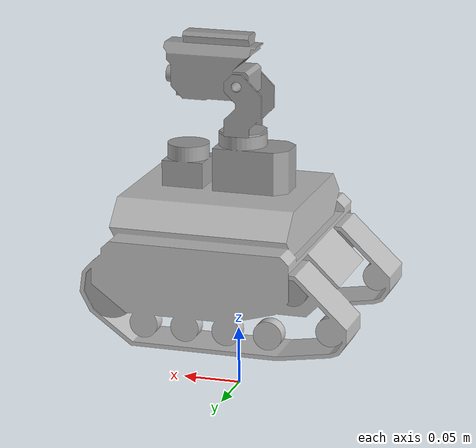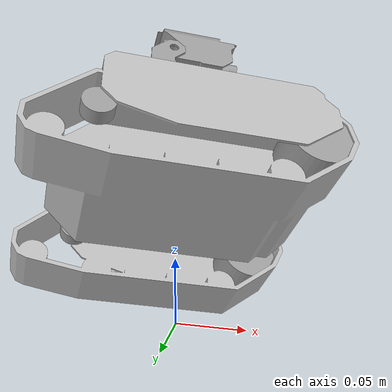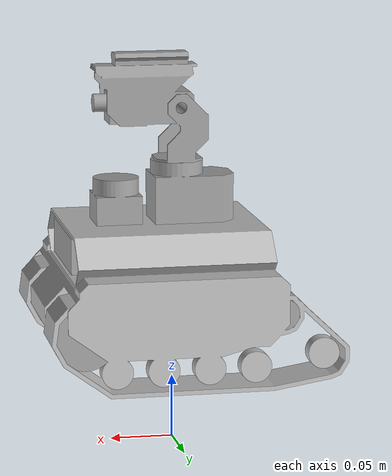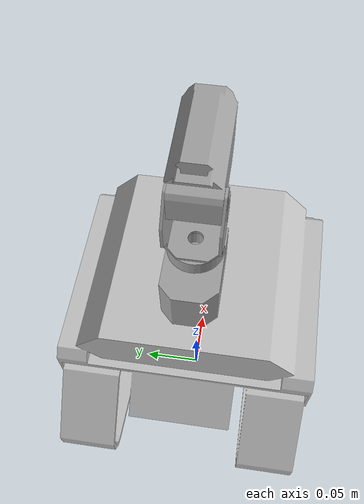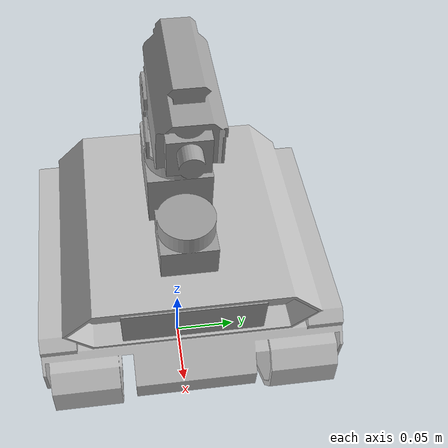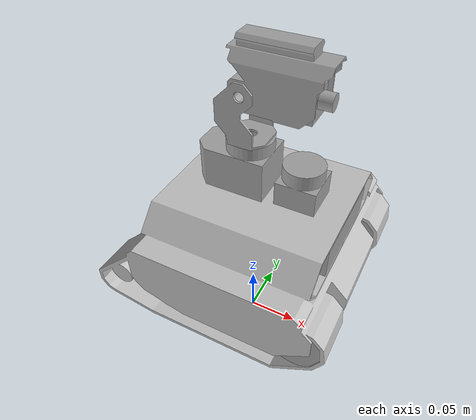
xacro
<?xml version="1.0" encoding="utf-8"?>
<robot
  name="ugv_beast"
  xmlns:xacro="http://www.ros.org/wiki/xacro">

  <!-- ros2_control: real robot by default; use_sim swaps in gz_ros2_control. -->
  <xacro:arg name="use_sim" default="false"/>
  <xacro:arg name="serial_device" default="/dev/ttyAMA0"/>
  <xacro:arg name="controllers_file"
             default="$(find ugv_bringup)/config/ugv_beast_controllers.yaml"/>

  <xacro:include filename="$(find ugv_description)/urdf/ugv_beast.ros2_control.xacro"/>
  <xacro:ugv_ros2_control name="ugv_beast"
                          use_sim="$(arg use_sim)"
                          serial_device="$(arg serial_device)"/>

  <!-- new-Gazebo sensors + gz_ros2_control system + track friction (sim only). -->
  <xacro:if value="$(arg use_sim)">
    <xacro:include filename="$(find ugv_description)/urdf/ugv_beast.gazebo.xacro"/>
    <xacro:ugv_beast_gazebo controllers_yaml="$(arg controllers_file)"/>
  </xacro:if>

  <link name="base_footprint"></link>
  <link
    name="base_link">
    <inertial>
      <origin
        xyz="0.00354888755897578 5.76435566946675E-16 0.0484823949816299"
        rpy="0 0 0" />
      <mass
        value="2.03227373732274" />
      <inertia
        ixx="0.00454892624270289"
        ixy="1.88130381907213E-16"
        ixz="-1.49884111957882E-05"
        iyy="0.00640381872536097"
        iyz="2.79234562022245E-17"
        izz="0.00806050395736081" />
    </inertial>
    <visual>
      <origin
        xyz="0 0 0"
        rpy="0 0 0" />
      <geometry>
        <mesh
          filename="package://ugv_description/meshes/ugv_beast/base_link.stl" />
      </geometry>
      <material
        name="">
        <color
          rgba="0.752941176470588 0.752941176470588 0.752941176470588 1" />
      </material>
    </visual>
    <collision>
      <origin
        xyz="0 0 0"
        rpy="0 0 0" />
      <geometry>
        <mesh
          filename="package://ugv_description/meshes/ugv_beast/base_link.stl" />
      </geometry>
    </collision>
  </link>

    <joint name="base_joint" type="fixed">
    <parent link="base_footprint"/>
    <child link="base_link"/>
    <origin xyz="0.000460087791654118 6.50856019576702E-10 0.08" rpy="0 0 0"/>
  </joint>

  <link name="base_imu_link">
      <origin xyz="0 0 0" rpy="0 0 0"/>
  </link>

  <joint name="imu_joint" type="fixed">
      <parent link="base_link" />
      <child link="base_imu_link" />
      <origin xyz="0 0 0" rpy="0 0 0"/>
  </joint>

  <link
    name="left_up_wheel_link">
    <inertial>
      <origin
        xyz="1.85684800868557E-14 0.015500000552408 7.25114412958305E-16"
        rpy="0 0 0" />
      <mass
        value="0.207085933743005" />
      <inertia
        ixx="0.000116541923504163"
        ixy="0"
        ixz="0"
        iyy="0.000170742352371108"
        iyz="0"
        izz="0.000116541923504163" />
    </inertial>
    <visual>
      <origin
        xyz="0 0 0"
        rpy="0 0 0" />
      <geometry>
        <mesh
          filename="package://ugv_description/meshes/ugv_beast/left_up_wheel_link.stl" />
      </geometry>
      <material
        name="">
        <color
          rgba="0.627450980392157 0.627450980392157 0.627450980392157 1" />
      </material>
    </visual>
    <!-- Sim contact: cylinder (radius = controller wheel_radius) instead of the
         mesh; the mesh stays as the visual. Axis along the axle (y) via roll=pi/2. -->
    <collision>
      <origin
        xyz="0 0.0155 0"
        rpy="1.5708 0 0" />
      <geometry>
        <cylinder radius="0.025" length="0.03"/>
      </geometry>
    </collision>
  </link>
  <joint
    name="left_up_wheel_link_joint"
    type="continuous">
    <origin
      xyz="0.0832175533230826 0.0619109945296507 0.0261492872743138"
      rpy="0 0 0" />
    <parent
      link="base_link" />
    <child
      link="left_up_wheel_link" />
    <axis
      xyz="0 -1 0" />
  </joint>
  <link
    name="left_down_wheel_link">
    <inertial>
      <origin
        xyz="7.2025718722557E-15 0.00599999763555432 3.33066907387547E-16"
        rpy="0 0 0" />
      <mass
        value="0.207085933743005" />
      <inertia
        ixx="0.000116541923504163"
        ixy="0"
        ixz="0"
        iyy="0.000170742352371108"
        iyz="0"
        izz="0.000116541923504163" />
    </inertial>
    <visual>
      <origin
        xyz="0 0 0"
        rpy="0 0 0" />
      <geometry>
        <mesh
          filename="package://ugv_description/meshes/ugv_beast/left_down_wheel_link.stl" />
      </geometry>
      <material
        name="">
        <color
          rgba="0.627450980392157 0.627450980392157 0.627450980392157 1" />
      </material>
    </visual>
    <collision>
      <origin
        xyz="0 0.006 0"
        rpy="1.5708 0 0" />
      <geometry>
        <cylinder radius="0.025" length="0.03"/>
      </geometry>
    </collision>
  </link>
  <joint
    name="left_down_wheel_link_joint"
    type="continuous">
    <origin
      xyz="-0.0722382907996229 0.0707110003635451 0.0356492872743132"
      rpy="0 0 0" />
    <parent
      link="base_link" />
    <child
      link="left_down_wheel_link" />
    <axis
      xyz="0 -1 0" />
  </joint>
  <link
    name="right_up_wheel_link">
    <inertial>
      <origin
        xyz="1.83603132697385E-14 -0.015500000552408 7.25114412958305E-16"
        rpy="0 0 0" />
      <mass
        value="0.207085933743005" />
      <inertia
        ixx="0.000116541923504163"
        ixy="0"
        ixz="0"
        iyy="0.000170742352371108"
        iyz="0"
        izz="0.000116541923504163" />
    </inertial>
    <visual>
      <origin
        xyz="0 0 0"
        rpy="0 0 0" />
      <geometry>
        <mesh
          filename="package://ugv_description/meshes/ugv_beast/right_up_wheel_link.stl" />
      </geometry>
      <material
        name="">
        <color
          rgba="0.627450980392157 0.627450980392157 0.627450980392157 1" />
      </material>
    </visual>
    <collision>
      <origin
        xyz="0 -0.0155 0"
        rpy="1.5708 0 0" />
      <geometry>
        <cylinder radius="0.025" length="0.03"/>
      </geometry>
    </collision>
  </link>
  <joint
    name="right_up_wheel_link_joint"
    type="continuous">
    <origin
      xyz="0.0832175533230817 -0.0619109945296519 0.0261492872743138"
      rpy="0 0 0" />
    <parent
      link="base_link" />
    <child
      link="right_up_wheel_link" />
    <axis
      xyz="0 -1 0" />
  </joint>
  <link
    name="right_down_wheel_link">
    <inertial>
      <origin
        xyz="7.13318293321663E-15 -0.00599999763555434 3.33066907387547E-16"
        rpy="0 0 0" />
      <mass
        value="0.207085933743005" />
      <inertia
        ixx="0.000116541923504163"
        ixy="0"
        ixz="0"
        iyy="0.000170742352371108"
        iyz="0"
        izz="0.000116541923504163" />
    </inertial>
    <visual>
      <origin
        xyz="0 0 0"
        rpy="0 0 0" />
      <geometry>
        <mesh
          filename="package://ugv_description/meshes/ugv_beast/right_down_wheel_link.stl" />
      </geometry>
      <material
        name="">
        <color
          rgba="0.627450980392157 0.627450980392157 0.627450980392157 1" />
      </material>
    </visual>
    <collision>
      <origin
        xyz="0 -0.006 0"
        rpy="1.5708 0 0" />
      <geometry>
        <cylinder radius="0.025" length="0.03"/>
      </geometry>
    </collision>
  </link>
  <joint
    name="right_down_wheel_link_joint"
    type="continuous">
    <origin
      xyz="-0.0722382907996239 -0.0707110003635441 0.0356492872743132"
      rpy="0 0 0" />
    <parent
      link="base_link" />
    <child
      link="right_down_wheel_link" />
    <axis
      xyz="0 1 0" />
  </joint>
  <link
    name="3d_camera_link">
    <inertial>
      <origin
        xyz="0.00849999999999999 -6.20230426557913E-17 0"
        rpy="0 0 0" />
      <mass
        value="0.043316" />
      <inertia
        ixx="3.27216283333333E-05"
        ixy="-2.01335432272409E-19"
        ixz="-1.19114008207638E-22"
        iyy="3.87317233333333E-06"
        iyz="-2.37303626261453E-22"
        izz="3.09348433333333E-05" />
    </inertial>
    <visual>
      <origin
        xyz="0 0 0"
        rpy="0 0 0" />
      <geometry>
        <mesh
          filename="package://ugv_description/meshes/ugv_beast/3d_camera_link.stl" />
      </geometry>
      <material
        name="">
        <color
          rgba="0.627450980392157 0.627450980392157 0.627450980392157 1" />
      </material>
    </visual>
    <collision>
      <origin
        xyz="0 0 0"
        rpy="0 0 0" />
      <geometry>
        <mesh
          filename="package://ugv_description/meshes/ugv_beast/3d_camera_link.stl" />
      </geometry>
    </collision>
  </link>
  <joint
    name="3d_camera_link_joint"
    type="fixed">
    <origin
      xyz="0.069874862129561 0 0.0792560807319928"
      rpy="0 0 0" />
    <parent
      link="base_link" />
    <child
      link="3d_camera_link" />
    <axis
      xyz="0 0 0" />
  </joint>
  <link
    name="base_lidar_link">
    <inertial>
      <origin
        xyz="-6.93889390390723E-18 -1.96708838451151E-18 0.0165546434494574"
        rpy="0 0 0" />
      <mass
        value="0.0418000091653573" />
      <inertia
        ixx="8.26853377699878E-06"
        ixy="-1.03397576569261E-22"
        ixz="-2.71740984786046E-22"
        iyy="8.26853377699876E-06"
        iyz="5.86109969113615E-23"
        izz="8.32524607487378E-06" />
    </inertial>
    <visual>
      <origin
        xyz="0 0 0"
        rpy="0 0 0" />
      <geometry>
        <mesh
          filename="package://ugv_description/meshes/ugv_beast/base_lidar_link.stl" />
      </geometry>
      <material
        name="">
        <color
          rgba="0.627450980392157 0.627450980392157 0.627450980392157 1" />
      </material>
    </visual>
    <collision>
      <origin
        xyz="0 0 0"
        rpy="0 0 0" />
      <geometry>
        <mesh
          filename="package://ugv_description/meshes/ugv_beast/base_lidar_link.stl" />
      </geometry>
    </collision>
  </link>
  <joint
    name="base_lidar_link_joint"
    type="fixed">
    <origin
      xyz="0.0443794126815426 0 0.0973030807319928"
      rpy="0 0 1.5708" />
    <parent
      link="base_link" />
    <child
      link="base_lidar_link" />
    <axis
      xyz="0 0 0" />
  </joint>
  <link
    name="pt_base_link">
    <inertial>
      <origin
        xyz="0.00127554206615719 2.79398301127343E-15 0.0215158687368638"
        rpy="0 0 0" />
      <mass
        value="0.109518186442022" />
      <inertia
        ixx="3.30168147078049E-05"
        ixy="-2.59519377344745E-18"
        ixz="-2.93137934608679E-06"
        iyy="5.1580984319637E-05"
        iyz="-6.30528721442011E-18"
        izz="4.86101329827053E-05" />
    </inertial>
    <visual>
      <origin
        xyz="0 0 0"
        rpy="0 0 0" />
      <geometry>
        <mesh
          filename="package://ugv_description/meshes/ugv_beast/pt_base_link.stl" />
      </geometry>
      <material
        name="">
        <color
          rgba="0.627450980392157 0.627450980392157 0.627450980392157 1" />
      </material>
    </visual>
    <collision>
      <origin
        xyz="0 0 0"
        rpy="0 0 0" />
      <geometry>
        <mesh
          filename="package://ugv_description/meshes/ugv_beast/pt_base_link.stl" />
      </geometry>
    </collision>
  </link>
  <joint
    name="pt_base_link_joint"
    type="fixed">
    <origin
      xyz="-0.0143274614150036 0 0.0973030807319928"
      rpy="0 0 0" />
    <parent
      link="base_link" />
    <child
      link="pt_base_link" />
    <axis
      xyz="0 0 0" />
  </joint>
  <link
    name="pt_link1">
    <inertial>
      <origin
        xyz="-0.00338129216527271 1.03496094682257E-15 0.0176096758355075"
        rpy="0 0 0" />
      <mass
        value="0.00710917409663916" />
      <inertia
        ixx="3.89716322571471E-06"
        ixy="-3.30348820061167E-19"
        ixz="2.3291936613051E-07"
        iyy="2.4980668051168E-06"
        iyz="-2.89344689202842E-19"
        izz="2.60402792588347E-06" />
    </inertial>
    <visual>
      <origin
        xyz="0 0 0"
        rpy="0 0 0" />
      <geometry>
        <mesh
          filename="package://ugv_description/meshes/ugv_beast/pt_link1.stl" />
      </geometry>
      <material
        name="">
        <color
          rgba="0.627450980392157 0.627450980392157 0.627450980392157 1" />
      </material>
    </visual>
    <collision>
      <origin
        xyz="0 0 0"
        rpy="0 0 0" />
      <geometry>
        <mesh
          filename="package://ugv_description/meshes/ugv_beast/pt_link1.stl" />
      </geometry>
    </collision>
  </link>
  <joint
    name="pt_base_link_to_pt_link1"
    type="revolute">
    <origin
      xyz="0.010151 0 0.048"
      rpy="0 0 0" />
    <parent
      link="pt_base_link" />
    <child
      link="pt_link1" />
    <axis
      xyz="0 0 -1" />
    <limit
      lower="-3.14"
      upper="3.14"
      effort="0"
      velocity="0" />
  </joint>
  <link
    name="pt_link2">
    <inertial>
      <origin
        xyz="0.0218201278828439 0.01195900026438 0.020000000000001"
        rpy="0 0 0" />
      <mass
        value="0.0970496053012515" />
      <inertia
        ixx="3.07158301509253E-05"
        ixy="-9.60865010663642E-07"
        ixz="-1.05774445029445E-19"
        iyy="3.74067734460567E-05"
        iyz="-1.71534698932683E-18"
        izz="4.94991610517831E-05" />
    </inertial>
    <visual>
      <origin
        xyz="0 0 0"
        rpy="0 0 0" />
      <geometry>
        <mesh
          filename="package://ugv_description/meshes/ugv_beast/pt_link2.stl" />
      </geometry>
      <material
        name="">
        <color
          rgba="0.627450980392157 0.627450980392157 0.627450980392157 1" />
      </material>
    </visual>
    <collision>
      <origin
        xyz="0 0 0"
        rpy="0 0 0" />
      <geometry>
        <mesh
          filename="package://ugv_description/meshes/ugv_beast/pt_link2.stl" />
      </geometry>
    </collision>
  </link>
  <joint
    name="pt_link1_to_pt_link2"
    type="revolute">
    <origin
      xyz="0 0.02 0.043003"
      rpy="1.5708 0 0" />
    <parent
      link="pt_link1" />
    <child
      link="pt_link2" />
    <axis
      xyz="0 0 1" />
    <limit
      lower="-0.5233333"
      upper="1.5707963"
      effort="0"
      velocity="0" />
  </joint>
  <link
    name="pt_camera_link">
    <inertial>
      <origin
        xyz="0.00630730338217479 -5.20013413546207E-17 0.000950308188413934"
        rpy="0 -1.5708 1.5708" />
      <mass
        value="0.00623651844028495" />
      <inertia
        ixx="5.11295942352593E-07"
        ixy="-4.50040932181143E-22"
        ixz="-4.00917493406375E-08"
        iyy="3.99078324787848E-07"
        iyz="4.11363605148623E-22"
        izz="4.02518684222241E-07" />
    </inertial>
    <visual>
      <origin
        xyz="0 0 0"
        rpy="0 -1.5708 1.5708" />
      <geometry>
        <mesh
          filename="package://ugv_description/meshes/ugv_beast/pt_camera_link.stl" />
      </geometry>
      <material
        name="">
        <color
          rgba="0.627450980392157 0.627450980392157 0.627450980392157 1" />
      </material>
    </visual>
    <collision>
      <origin
        xyz="0 0 0"
        rpy="0 -1.5708 1.5708" />
      <geometry>
        <mesh
          filename="package://ugv_description/meshes/ugv_beast/pt_camera_link.stl" />
      </geometry>
    </collision>
  </link>
  <joint
    name="pt_link2_to_pt_camera_link"
    type="fixed">
    <origin
      xyz="0.0476858338436577 -0.000568997109077291 0.0199999999999997"
      rpy="3.14 -1.5708 0" />
    <parent
      link="pt_link2" />
    <child
      link="pt_camera_link" />
    <axis
      xyz="0 0 0" />
  </joint>
</robot>
